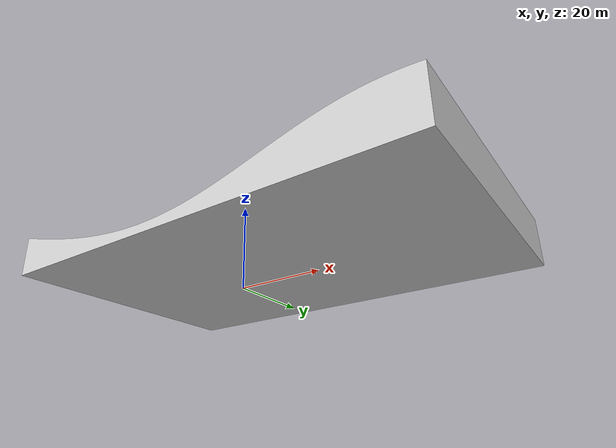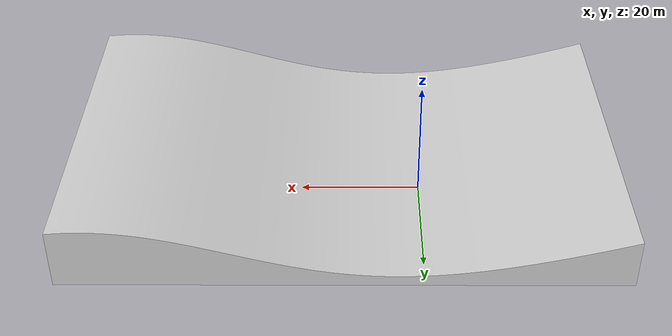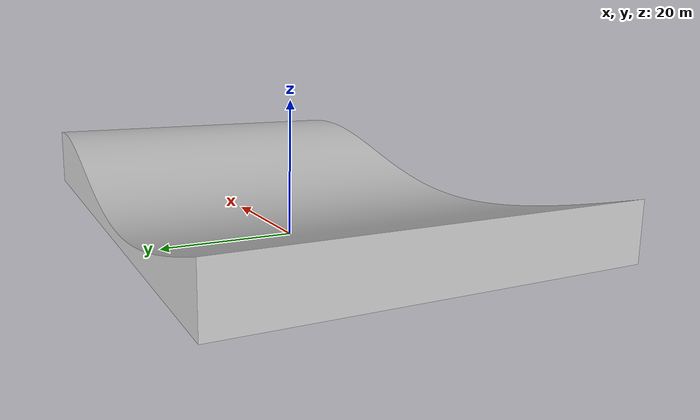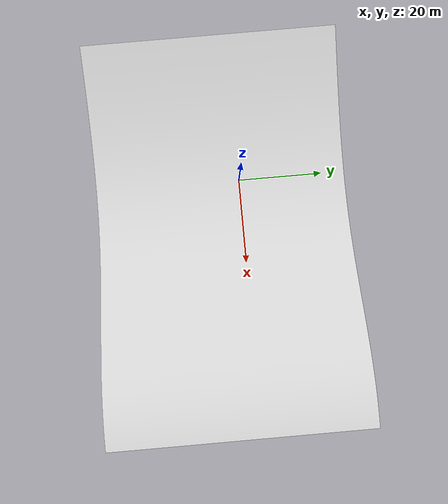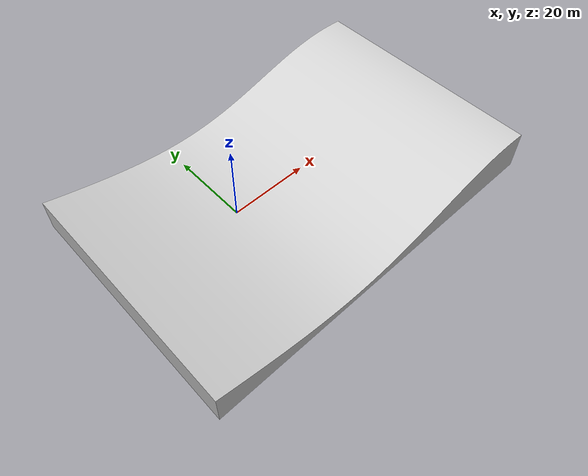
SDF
<?xml version='1.0'?>
<sdf version='1.6'>
  <!-- Definition of the model named 'hill' -->
  <model name='hill'>
    <!-- Definition of the first link in the model -->
    <link name='link_0'>
      <!-- Visual properties of the link -->
      <visual name='visual'>
        <pose frame=''>0 0 0 0 -0 0</pose> <!-- The orientation and position of the visual component -->
        <geometry>
          <!-- Mesh used for the visual shape -->
          <mesh>
            <uri>model://hill/meshes/hill.dae</uri> <!-- Reference to the mesh file -->
            <scale>1 1 1</scale> <!-- Scale of the mesh -->
          </mesh>
        </geometry>
        <!-- Material properties for rendering -->
        <material>
          <script>
            <!-- Path to material scripts and textures -->
            <uri>model://hill/materials/scripts</uri>
            <uri>model://hill/materials/textures</uri>
            <name>hill</name> <!-- Material name -->
          </script>
        </material>
      </visual>
      <!-- Collision properties of the link -->
      <collision name='collision'>
        <laser_retro>0</laser_retro> <!-- Reflectivity for laser sensors -->
        <max_contacts>10</max_contacts> <!-- Maximum number of contact points to be processed during collision -->
        <pose frame=''>0 0 0 0 -0 0</pose> <!-- The orientation and position of the collision component -->
        <geometry>
          <!-- Mesh used for collision detection -->
          <mesh>
            <uri>model://hill/meshes/hill.dae</uri>
            <scale>1 1 1</scale>
          </mesh>
        </geometry>
      </collision>
    </link>
    <!-- Definition of the second link in the model -->
    <link name='link_1'>
      <!-- Visual properties of the second link -->
      <visual name='visual'>
        <pose frame=''>0 0 0 0 -0 0</pose>
        <geometry>
          <mesh>
            <uri>model://can_coke/meshes/metal.dae</uri> <!-- Mesh reference for a different model part CHECK THIS -->
            <scale>1 1 1</scale>
          </mesh>
        </geometry>
        <material>
          <lighting>1</lighting> <!-- Lighting effect enabled -->
          <script>
            <!-- External file reference for additional material properties -->
            <uri>file://media/materials/scripts/gazebo.material</uri>
            <name>Gazebo/Grey</name>
          </script>
          <ambient>0.666 0.666 0.666 1</ambient> <!-- Ambient light reflection -->
          <diffuse>0.666 0.666 0.666 1</diffuse> <!-- Diffuse light reflection -->
          <specular>0.01 0.01 0.01 1</specular> <!-- Specular highlights -->
          <emissive>0 0 0 1</emissive> <!-- Self-illumination properties -->
        </material>
        <cast_shadows>1</cast_shadows> <!-- Enables shadow casting -->
        <transparency>0</transparency> <!-- Visual transparency level -->
      </visual>
      <!-- Repeated collision properties for the second link -->
      <collision name='collision'>
        <laser_retro>0</laser_retro>
        <max_contacts>10</max_contacts>
        <pose frame=''>0 0 0 0 -0 0</pose>
        <geometry>
          <mesh>
            <uri>model://hill/meshes/hill.dae</uri>
            <scale>1 1 1</scale>
          </mesh>
        </geometry>
      </collision>
    </link>
    <static>1</static> <!-- Model is static within the simulation environment -->
    <allow_auto_disable>1</allow_auto_disable> <!-- Allows the simulation to optimize by disabling inactive elements -->
  </model>
</sdf>
